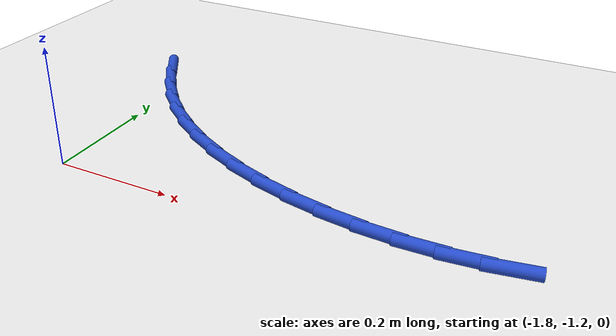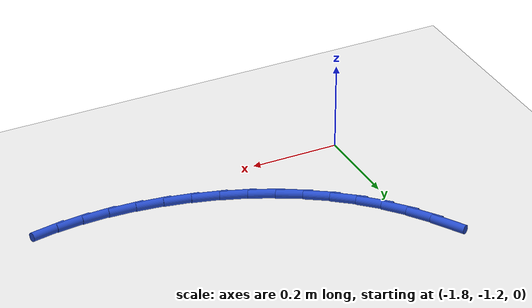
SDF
<sdf version="1.6">
 <world name="default">
  <model name="ground_plane">
   <static>1</static>
   <link name="link">
    <collision name="collision">
     <geometry><plane><normal>0 0 1</normal><size>100 100</size></plane></geometry>
     <surface><friction><ode><mu>100</mu><mu2>50</mu2></ode></friction></surface>
    </collision>
    <visual name="visual">
     <cast_shadows>0</cast_shadows>
     <geometry><plane><normal>0 0 1</normal><size>100 100</size></plane></geometry>
     <material>
      <script><uri>file://media/materials/scripts/gazebo.material</uri><name>Gazebo/WhiteGlow</name></script>
     </material>
    </visual>
   </link>
  </model>
  <model name="line">
   <link name="link_76">
    <pose>-1.8591927052556996 -0.8039820145804754 0.01 0 1.57 -1.023257978454123</pose>
    <collision name="collision">
     <geometry><cylinder><radius>0.01</radius><length>0.08</length></cylinder></geometry>
    </collision>
    <visual name="visual">
     <material>
      <script><name>Gazebo/Blue</name><uri>file://media/materials/scripts/gazebo.material</uri></script>
     </material>
     <geometry><cylinder><radius>0.01</radius><length>0.08</length></cylinder></geometry>
    </visual>
   </link>
   <link name="link_77">
    <pose>-1.8292759447799112 -0.853048138598279 0.01 0 1.57 -0.9476526392531757</pose>
    <collision name="collision">
     <geometry><cylinder><radius>0.01</radius><length>0.08</length></cylinder></geometry>
    </collision>
    <visual name="visual">
     <material>
      <script><name>Gazebo/Blue</name><uri>file://media/materials/scripts/gazebo.material</uri></script>
     </material>
     <geometry><cylinder><radius>0.01</radius><length>0.08</length></cylinder></geometry>
    </visual>
   </link>
   <link name="link_78">
    <pose>-1.7960394944899902 -0.8992955860179408 0.01 0 1.57 -0.8583736840667903</pose>
    <collision name="collision">
     <geometry><cylinder><radius>0.01</radius><length>0.08</length></cylinder></geometry>
    </collision>
    <visual name="visual">
     <material>
      <script><name>Gazebo/Blue</name><uri>file://media/materials/scripts/gazebo.material</uri></script>
     </material>
     <geometry><cylinder><radius>0.01</radius><length>0.08</length></cylinder></geometry>
    </visual>
   </link>
   <link name="link_79">
    <pose>-1.7588751897111252 -0.9423222810325701 0.01 0 1.57 -0.7583177487763049</pose>
    <collision name="collision">
     <geometry><cylinder><radius>0.01</radius><length>0.08</length></cylinder></geometry>
    </collision>
    <visual name="visual">
     <material>
      <script><name>Gazebo/Blue</name><uri>file://media/materials/scripts/gazebo.material</uri></script>
     </material>
     <geometry><cylinder><radius>0.01</radius><length>0.08</length></cylinder></geometry>
    </visual>
   </link>
   <link name="link_80">
    <pose>-1.7172537855261505 -0.9817483493820691 0.01 0 1.57 -0.6602498310962148</pose>
    <collision name="collision">
     <geometry><cylinder><radius>0.01</radius><length>0.08</length></cylinder></geometry>
    </collision>
    <visual name="visual">
     <material>
      <script><name>Gazebo/Blue</name><uri>file://media/materials/scripts/gazebo.material</uri></script>
     </material>
     <geometry><cylinder><radius>0.01</radius><length>0.08</length></cylinder></geometry>
    </visual>
   </link>
   <link name="link_81">
    <pose>-1.6713508773600456 -1.0173922010674974 0.01 0 1.57 -0.569540476036709</pose>
    <collision name="collision">
     <geometry><cylinder><radius>0.01</radius><length>0.08</length></cylinder></geometry>
    </collision>
    <visual name="visual">
     <material>
      <script><name>Gazebo/Blue</name><uri>file://media/materials/scripts/gazebo.material</uri></script>
     </material>
     <geometry><cylinder><radius>0.01</radius><length>0.08</length></cylinder></geometry>
    </visual>
   </link>
   <link name="link_82">
    <pose>-1.621712728651751 -1.0491765216667903 0.01 0 1.57 -0.48516540908731043</pose>
    <collision name="collision">
     <geometry><cylinder><radius>0.01</radius><length>0.08</length></cylinder></geometry>
    </collision>
    <visual name="visual">
     <material>
      <script><name>Gazebo/Blue</name><uri>file://media/materials/scripts/gazebo.material</uri></script>
     </material>
     <geometry><cylinder><radius>0.01</radius><length>0.08</length></cylinder></geometry>
    </visual>
   </link>
   <link name="link_83">
    <pose>-1.5688889052044832 -1.0770249257723319 0.01 0 1.57 -0.4059204777827044</pose>
    <collision name="collision">
     <geometry><cylinder><radius>0.01</radius><length>0.08</length></cylinder></geometry>
    </collision>
    <visual name="visual">
     <material>
      <script><name>Gazebo/Blue</name><uri>file://media/materials/scripts/gazebo.material</uri></script>
     </material>
     <geometry><cylinder><radius>0.01</radius><length>0.08</length></cylinder></geometry>
    </visual>
   </link>
   <link name="link_84">
    <pose>-1.5134289728214596 -1.1008610279765054 0.01 0 1.57 -0.3305646980396971</pose>
    <collision name="collision">
     <geometry><cylinder><radius>0.01</radius><length>0.08</length></cylinder></geometry>
    </collision>
    <visual name="visual">
     <material>
      <script><name>Gazebo/Blue</name><uri>file://media/materials/scripts/gazebo.material</uri></script>
     </material>
     <geometry><cylinder><radius>0.01</radius><length>0.08</length></cylinder></geometry>
    </visual>
   </link>
   <link name="link_85">
    <pose>-1.455882497305897 -1.120608442871695 0.01 0 1.57 -0.25786285579046825</pose>
    <collision name="collision">
     <geometry><cylinder><radius>0.01</radius><length>0.08</length></cylinder></geometry>
    </collision>
    <visual name="visual">
     <material>
      <script><name>Gazebo/Blue</name><uri>file://media/materials/scripts/gazebo.material</uri></script>
     </material>
     <geometry><cylinder><radius>0.01</radius><length>0.08</length></cylinder></geometry>
    </visual>
   </link>
   <link name="link_86">
    <pose>-1.3967990444610139 -1.1361907850502828 0.01 0 1.57 -0.1865955438516769</pose>
    <collision name="collision">
     <geometry><cylinder><radius>0.01</radius><length>0.08</length></cylinder></geometry>
    </collision>
    <visual name="visual">
     <material>
      <script><name>Gazebo/Blue</name><uri>file://media/materials/scripts/gazebo.material</uri></script>
     </material>
     <geometry><cylinder><radius>0.01</radius><length>0.08</length></cylinder></geometry>
    </visual>
   </link>
   <link name="link_87">
    <pose>-1.3367281800900264 -1.147531669104653 0.01 0 1.57 -0.11554958171634358</pose>
    <collision name="collision">
     <geometry><cylinder><radius>0.01</radius><length>0.08</length></cylinder></geometry>
    </collision>
    <visual name="visual">
     <material>
      <script><name>Gazebo/Blue</name><uri>file://media/materials/scripts/gazebo.material</uri></script>
     </material>
     <geometry><cylinder><radius>0.01</radius><length>0.08</length></cylinder></geometry>
    </visual>
   </link>
   <link name="link_88">
    <pose>-1.2762194699961529 -1.1545547096271893 0.01 0 1.57 -0.04349808486177246</pose>
    <collision name="collision">
     <geometry><cylinder><radius>0.01</radius><length>0.08</length></cylinder></geometry>
    </collision>
    <visual name="visual">
     <material>
      <script><name>Gazebo/Blue</name><uri>file://media/materials/scripts/gazebo.material</uri></script>
     </material>
     <geometry><cylinder><radius>0.01</radius><length>0.08</length></cylinder></geometry>
    </visual>
   </link>
   <link name="link_89">
    <pose>-1.215822479982609 -1.1571835212102748 0.01 0 1.57 0.0307914798468725</pose>
    <collision name="collision">
     <geometry><cylinder><radius>0.01</radius><length>0.08</length></cylinder></geometry>
    </collision>
    <visual name="visual">
     <material>
      <script><name>Gazebo/Blue</name><uri>file://media/materials/scripts/gazebo.material</uri></script>
     </material>
     <geometry><cylinder><radius>0.01</radius><length>0.08</length></cylinder></geometry>
    </visual>
   </link>
   <link name="link_90">
    <pose>-1.1560840973424509 -1.155343506453027 0.01 0 1.57 0.1060009878600079</pose>
    <collision name="collision">
     <geometry><cylinder><radius>0.01</radius><length>0.08</length></cylinder></geometry>
    </collision>
    <visual name="visual">
     <material>
      <script><name>Gazebo/Blue</name><uri>file://media/materials/scripts/gazebo.material</uri></script>
     </material>
     <geometry><cylinder><radius>0.01</radius><length>0.08</length></cylinder></geometry>
    </visual>
   </link>
   <link name="link_91">
    <pose>-1.09735022273314 -1.149094234127591 0.01 0 1.57 0.177826870800744</pose>
    <collision name="collision">
     <geometry><cylinder><radius>0.01</radius><length>0.08</length></cylinder></geometry>
    </collision>
    <visual name="visual">
     <material>
      <script><name>Gazebo/Blue</name><uri>file://media/materials/scripts/gazebo.material</uri></script>
     </material>
     <geometry><cylinder><radius>0.01</radius><length>0.08</length></cylinder></geometry>
    </visual>
   </link>
  </model>
 </world>
</sdf>
